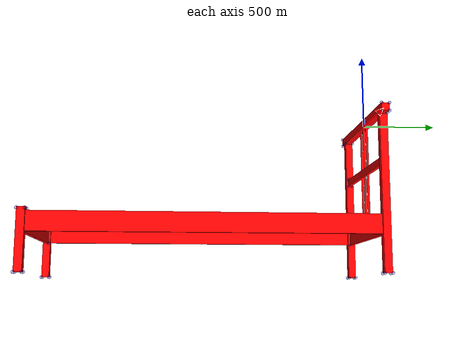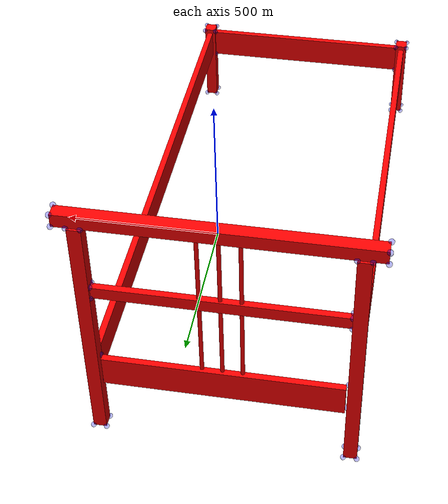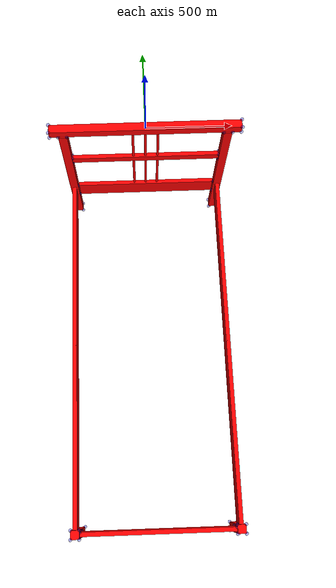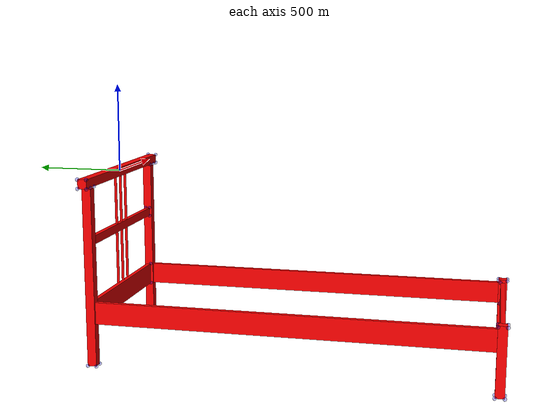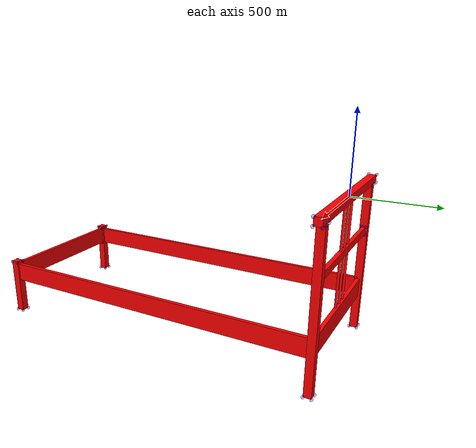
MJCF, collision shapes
<mujoco model="bed_dalselv_0270">
  <asset>
    <mesh file="bed_dalselv_0270/0.stl" name="part0" scale="1 1 1" />
    <mesh file="bed_dalselv_0270/9.stl" name="part9" scale="1 1 1" />
    <mesh file="bed_dalselv_0270/8.stl" name="part8" scale="1 1 1" />
    <mesh file="bed_dalselv_0270/7.stl" name="part7" scale="1 1 1" />
    <mesh file="bed_dalselv_0270/6.stl" name="part6" scale="1 1 1" />
    <mesh file="bed_dalselv_0270/5.stl" name="part6" scale="1 1 1" />
    <mesh file="bed_dalselv_0270/4.stl" name="part4" scale="1 1 1" />
    <mesh file="bed_dalselv_0270/3.stl" name="part3" scale="1 1 1" />
    <mesh file="bed_dalselv_0270/2.stl" name="part2" scale="1 1 1" />
    <mesh file="bed_dalselv_0270/14.stl" name="part14" scale="1 1 1" />
    <mesh file="bed_dalselv_0270/13.stl" name="part13" scale="1 1 1" />
    <mesh file="bed_dalselv_0270/12.stl" name="part12" scale="1 1 1" />
    <mesh file="bed_dalselv_0270/11.stl" name="part11" scale="1 1 1" />
    <mesh file="bed_dalselv_0270/10.stl" name="part10" scale="1 1 1" />
    <mesh file="bed_dalselv_0270/1.stl" name="part1" scale="1 1 1" />
  </asset>
  <equality>
    <weld active="false" body1="2_part10" body2="11_part6" solimp="1 1 0.5" solref="0.01 0.3" />
    <weld active="false" body1="12_part7" body2="11_part6" solimp="1 1 0.5" solref="0.01 0.3" />
    <weld active="false" body1="2_part10" body2="3_part11" solimp="1 1 0.5" solref="0.01 0.3" />
    <weld active="false" body1="12_part7" body2="3_part11" solimp="1 1 0.5" solref="0.01 0.3" />
    <weld active="false" body1="14_part9" body2="10_part5" solimp="1 1 0.5" solref="0.01 0.3" />
    <weld active="false" body1="13_part8" body2="10_part5" solimp="1 1 0.5" solref="0.01 0.3" />
    <weld active="false" body1="2_part10" body2="1_part1" solimp="1 1 0.5" solref="0.01 0.3" />
    <weld active="false" body1="12_part7" body2="1_part1" solimp="1 1 0.5" solref="0.01 0.3" />
    <weld active="false" body1="14_part9" body2="4_part12" solimp="1 1 0.5" solref="0.01 0.3" />
    <weld active="false" body1="13_part8" body2="4_part12" solimp="1 1 0.5" solref="0.01 0.3" />
    <weld active="false" body1="0_part0" body2="2_part10" solimp="1 1 0.5" solref="0.01 0.3" />
    <weld active="false" body1="0_part0" body2="12_part7" solimp="1 1 0.5" solref="0.01 0.3" />
    <weld active="false" body1="14_part9" body2="3_part11" solimp="1 1 0.5" solref="0.01 0.3" />
    <weld active="false" body1="13_part8" body2="3_part11" solimp="1 1 0.5" solref="0.01 0.3" />
    <weld active="false" body1="4_part12" body2="2_part10" solimp="1 1 0.5" solref="0.01 0.3" />
    <weld active="false" body1="4_part12" body2="12_part7" solimp="1 1 0.5" solref="0.01 0.3" />
  </equality>
  <worldbody>
    <body name="0_part0" pos="5e-06 -4e-07 0.0" quat="1 0 0 0">
      <geom conaffinity="0" contype="0" density="0" mesh="part0" name="0_part0_mesh" pos="0 0 0" rgba="0.82 0.71 0.55 1" type="mesh" />
      <site name="0_part0_horizontal_radius_site" pos="5e-06 -4e-07 0.0" quat="1 0 0 0" rgba="0 0 1 0.3" size="1" />
      <site name="0_part0_top_site" pos="5e-06 -3e-07 25.4000244" quat="1 0 0 0" rgba="0 0 1 0.3" size="1" />
      <site name="0_part0_bottom_site" pos="5e-06 -3e-07 -25.4000244" quat="1 0 0 0" rgba="0 0 1 0.3" size="1" />
      <site name="0_part0_corner_site8" pos="-558.799995 25.4000027 25.4000244" quat="1 0 0 0" rgba="0 0 1 0.3" size="10.5" />
      <site name="0_part0_corner_site7" pos="558.800005 25.4000027 25.4000244" quat="1 0 0 0" rgba="0 0 1 0.3" size="10.5" />
      <site name="0_part0_corner_site6" pos="558.800005 -25.4000034 25.4000244" quat="1 0 0 0" rgba="0 0 1 0.3" size="10.5" />
      <site name="0_part0_corner_site5" pos="-558.799995 -25.4000034 25.4000244" quat="1 0 0 0" rgba="0 0 1 0.3" size="10.5" />
      <site name="0_part0_corner_site4" pos="-558.799995 25.4000027 -25.4000244" quat="1 0 0 0" rgba="0 0 1 0.3" size="10.5" />
      <site name="0_part0_corner_site3" pos="558.800005 25.4000027 -25.4000244" quat="1 0 0 0" rgba="0 0 1 0.3" size="10.5" />
      <site name="0_part0_corner_site2" pos="558.800005 -25.4000034 -25.4000244" quat="1 0 0 0" rgba="0 0 1 0.3" size="10.5" />
      <site name="0_part0_corner_site1" pos="-558.799995 -25.4000034 -25.4000244" quat="1 0 0 0" rgba="0 0 1 0.3" size="10.5" />
      <geom density="50" name="noviz_collision_0_part0_0" pos="0 0.00121 0.35552" quat="1 0 0 0" rgba="1 0 0 1" size="558.8 25.40121 25.75555" solref="0.001 1" type="box" />
      <site name="Top-TallLeg,0,conn_site2" pos="-487 0 -25.40002" quat="1 0 0 0" rgba="0.9843, 0.1812, 0.1812, 0.3" size="1" />
      <site name="Top-TallLeg,0,conn_site1" pos="483 0 -25.40002" quat="1 0 0 0" rgba="0.9843, 0.1812, 0.1812, 0.3" size="1" />
    </body>
    <body name="14_part9" pos="482.600005 -2235.2000826 -850.9000244" quat="1 0 0 0">
      <geom conaffinity="0" contype="0" density="0" mesh="part9" name="14_part9_mesh" pos="0 0 0" rgba="0.82 0.71 0.55 1" type="mesh" />
      <site name="14_part9_horizontal_radius_site" pos="0.0 -2e-07 0.0" quat="1 0 0 0" rgba="0 0 1 0.3" size="1" />
      <site name="14_part9_top_site" pos="0.0 -1e-07 190.5" quat="1 0 0 0" rgba="0 0 1 0.3" size="1" />
      <site name="14_part9_bottom_site" pos="0.0 -1e-07 -190.5" quat="1 0 0 0" rgba="0 0 1 0.3" size="1" />
      <site name="14_part9_corner_site8" pos="-25.4 25.4000851 190.5" quat="1 0 0 0" rgba="0 0 1 0.3" size="10.5" />
      <site name="14_part9_corner_site7" pos="25.4 25.4000851 190.5" quat="1 0 0 0" rgba="0 0 1 0.3" size="10.5" />
      <site name="14_part9_corner_site6" pos="25.4 -25.4000854 190.5" quat="1 0 0 0" rgba="0 0 1 0.3" size="10.5" />
      <site name="14_part9_corner_site5" pos="-25.4 -25.4000854 190.5" quat="1 0 0 0" rgba="0 0 1 0.3" size="10.5" />
      <site name="14_part9_corner_site4" pos="-25.4 25.4000851 -190.5" quat="1 0 0 0" rgba="0 0 1 0.3" size="10.5" />
      <site name="14_part9_corner_site3" pos="25.4 25.4000851 -190.5" quat="1 0 0 0" rgba="0 0 1 0.3" size="10.5" />
      <site name="14_part9_corner_site2" pos="25.4 -25.4000854 -190.5" quat="1 0 0 0" rgba="0 0 1 0.3" size="10.5" />
      <site name="14_part9_corner_site1" pos="-25.4 -25.4000854 -190.5" quat="1 0 0 0" rgba="0 0 1 0.3" size="10.5" />
      <geom density="50" name="noviz_collision_14_part9_0" pos="-0.25296 0.25317 3.401" quat="1 0 0 0" rgba="1 0 0 1" size="25.14703 25.65308 193.901" solref="0.001 1" type="box" />
      <site name="ShortLeg-SideBottom1,0,conn_site1" pos="-3.17499 29.6001 91.5" quat="0.7071067 0.7071068 0 0" rgba="0.9801, 0.5419, 0.1038, 0.3" size="1" />
      <site name="ShortLeg-BottomBoard,0,180,conn_site2" pos="-23.20001 0.11377 112.9" quat="0.7071067 0 0.7071068 0" rgba="0.9809, 0.9809, 0.1133, 0.3" size="1" />
    </body>
    <body name="13_part8" pos="-482.599995 -2235.2000826 -850.9000244" quat="1 0 0 0">
      <geom conaffinity="0" contype="0" density="0" mesh="part8" name="13_part8_mesh" pos="0 0 0" rgba="0.82 0.71 0.55 1" type="mesh" />
      <site name="13_part8_horizontal_radius_site" pos="0.0 -2e-07 0.0" quat="1 0 0 0" rgba="0 0 1 0.3" size="1" />
      <site name="13_part8_top_site" pos="0.0 -1e-07 190.5" quat="1 0 0 0" rgba="0 0 1 0.3" size="1" />
      <site name="13_part8_bottom_site" pos="0.0 -1e-07 -190.5" quat="1 0 0 0" rgba="0 0 1 0.3" size="1" />
      <site name="13_part8_corner_site8" pos="-25.4 25.4000851 190.5" quat="1 0 0 0" rgba="0 0 1 0.3" size="10.5" />
      <site name="13_part8_corner_site7" pos="25.4 25.4000851 190.5" quat="1 0 0 0" rgba="0 0 1 0.3" size="10.5" />
      <site name="13_part8_corner_site6" pos="25.4 -25.4000854 190.5" quat="1 0 0 0" rgba="0 0 1 0.3" size="10.5" />
      <site name="13_part8_corner_site5" pos="-25.4 -25.4000854 190.5" quat="1 0 0 0" rgba="0 0 1 0.3" size="10.5" />
      <site name="13_part8_corner_site4" pos="-25.4 25.4000851 -190.5" quat="1 0 0 0" rgba="0 0 1 0.3" size="10.5" />
      <site name="13_part8_corner_site3" pos="25.4 25.4000851 -190.5" quat="1 0 0 0" rgba="0 0 1 0.3" size="10.5" />
      <site name="13_part8_corner_site2" pos="25.4 -25.4000854 -190.5" quat="1 0 0 0" rgba="0 0 1 0.3" size="10.5" />
      <site name="13_part8_corner_site1" pos="-25.4 -25.4000854 -190.5" quat="1 0 0 0" rgba="0 0 1 0.3" size="10.5" />
      <geom density="50" name="noviz_collision_13_part8_0" pos="0.25296 0.25317 3.401" quat="1 0 0 0" rgba="1 0 0 1" size="25.65295 25.65308 193.901" solref="0.001 1" type="box" />
      <site name="ShortLeg-BottomBoard,0,180,conn_site1" pos="23.60001 0.11377 116.9" quat="0.7071067 0 -0.7071068 0" rgba="0.9809, 0.9809, 0.1133, 0.3" size="1" />
      <site name="ShortLeg-SideBoard,0,conn_site1" pos="3.17502 26.2002 100.9" quat="0.7071067 0.7071068 0 0" rgba="0.5567, 0.9916, 0.1219, 0.3" size="1" />
    </body>
    <body name="12_part7" pos="-482.599995 -4e-07 -533.4000244" quat="1 0 0 0">
      <geom conaffinity="0" contype="0" density="0" mesh="part7" name="12_part7_mesh" pos="0 0 0" rgba="0.82 0.71 0.55 1" type="mesh" />
      <site name="12_part7_horizontal_radius_site" pos="0.0 -4e-07 0.0" quat="1 0 0 0" rgba="0 0 1 0.3" size="1" />
      <site name="12_part7_top_site" pos="0.0 -3e-07 508.0" quat="1 0 0 0" rgba="0 0 1 0.3" size="1" />
      <site name="12_part7_bottom_site" pos="0.0 -3e-07 -508.0" quat="1 0 0 0" rgba="0 0 1 0.3" size="1" />
      <site name="12_part7_corner_site8" pos="-25.4 25.4000027 508.0" quat="1 0 0 0" rgba="0 0 1 0.3" size="10.5" />
      <site name="12_part7_corner_site7" pos="25.4 25.4000027 508.0" quat="1 0 0 0" rgba="0 0 1 0.3" size="10.5" />
      <site name="12_part7_corner_site6" pos="25.4 -25.4000034 508.0" quat="1 0 0 0" rgba="0 0 1 0.3" size="10.5" />
      <site name="12_part7_corner_site5" pos="-25.4 -25.4000034 508.0" quat="1 0 0 0" rgba="0 0 1 0.3" size="10.5" />
      <site name="12_part7_corner_site4" pos="-25.4 25.4000027 -508.0" quat="1 0 0 0" rgba="0 0 1 0.3" size="10.5" />
      <site name="12_part7_corner_site3" pos="25.4 25.4000027 -508.0" quat="1 0 0 0" rgba="0 0 1 0.3" size="10.5" />
      <site name="12_part7_corner_site2" pos="25.4 -25.4000034 -508.0" quat="1 0 0 0" rgba="0 0 1 0.3" size="10.5" />
      <site name="12_part7_corner_site1" pos="-25.4 -25.4000034 -508.0" quat="1 0 0 0" rgba="0 0 1 0.3" size="10.5" />
      <geom density="50" name="noviz_collision_12_part7_0" pos="0.17764 -0.17332 -3.93762" quat="1 0 0 0" rgba="1 0 0 1" size="25.57764 25.22668 504.0624" solref="0.001 1" type="box" />
      <site name="TallLeg-Top,0,conn_site2" pos="-4.39999 0 508" quat="1 0 0 0" rgba="0.9843, 0.1812, 0.1812, 0.3" size="1" />
      <site name="TallLeg-CenterPiece,0,180,conn_site5" pos="22.60001 0.11377 196.4" quat="0.7071067 0 -0.7071068 0" rgba="0.2017, 0.9819, 0.2017, 0.3" size="1" />
      <site name="TallLeg-BottomPiece,0,180,conn_site2" pos="23.20001 0.11377 -199.6" quat="0.7071067 0 -0.7071068 0" rgba="0.0925, 0.9844, 0.5384, 0.3" size="1" />
      <site name="TallLeg-SideBoard,0,conn_site1" pos="3.17502 -22.9 -195.6" quat="0.7071067 -0.7071068 0 0" rgba="0.1232, 0.9898, 0.9898, 0.3" size="1" />
    </body>
    <body name="11_part6" pos="5e-06 0.2275379 -736.6000244" quat="1 0 0 0">
      <geom conaffinity="0" contype="0" density="0" mesh="part6" name="11_part6_mesh" pos="0 0 0" rgba="0.82 0.71 0.55 1" type="mesh" />
      <site name="11_part6_horizontal_radius_site" pos="-1.1e-06 0.0 -0.0" quat="1 0 0 0" rgba="0 0 1 0.3" size="1" />
      <site name="11_part6_top_site" pos="-1.1e-06 0.0 63.5" quat="1 0 0 0" rgba="0 0 1 0.3" size="1" />
      <site name="11_part6_bottom_site" pos="-1.1e-06 0.0 -63.5" quat="1 0 0 0" rgba="0 0 1 0.3" size="1" />
      <site name="11_part6_corner_site8" pos="-469.9000011 12.7000046 63.5" quat="1 0 0 0" rgba="0 0 1 0.3" size="10.5" />
      <site name="11_part6_corner_site7" pos="469.8999989 12.7000046 63.5" quat="1 0 0 0" rgba="0 0 1 0.3" size="10.5" />
      <site name="11_part6_corner_site6" pos="469.8999989 -12.7000046 63.5" quat="1 0 0 0" rgba="0 0 1 0.3" size="10.5" />
      <site name="11_part6_corner_site5" pos="-469.9000011 -12.7000046 63.5" quat="1 0 0 0" rgba="0 0 1 0.3" size="10.5" />
      <site name="11_part6_corner_site4" pos="-469.9000011 12.7000046 -63.5" quat="1 0 0 0" rgba="0 0 1 0.3" size="10.5" />
      <site name="11_part6_corner_site3" pos="469.8999989 12.7000046 -63.5" quat="1 0 0 0" rgba="0 0 1 0.3" size="10.5" />
      <site name="11_part6_corner_site2" pos="469.8999989 -12.7000046 -63.5" quat="1 0 0 0" rgba="0 0 1 0.3" size="10.5" />
      <site name="11_part6_corner_site1" pos="-469.9000011 -12.7000046 -63.5" quat="1 0 0 0" rgba="0 0 1 0.3" size="10.5" />
      <geom density="50" name="noviz_collision_11_part6_0" pos="0 0 0.23956" quat="1 0 0 0" rgba="1 0 0 1" size="450 12.7 63.73956" solref="0.001 1" type="box" />
      <site name="BottomPiece-TallLeg,0,180,conn_site2" pos="-459.4 -0.11377 3.60004" quat="0.7071067 0 -0.7071068 0" rgba="0.0925, 0.9844, 0.5384, 0.3" size="1" />
      <site name="BottomPiece-TallLeg,0,180,conn_site1" pos="459 -0.11377 -15.39996" quat="0.7071067 0 0.7071068 0" rgba="0.0925, 0.9844, 0.5384, 0.3" size="1" />
    </body>
    <body name="10_part5" pos="5e-06 -2234.9724635 -736.6000244" quat="1 0 0 0">
      <geom conaffinity="0" contype="0" density="0" mesh="part5" name="10_part5_mesh" pos="0 0 0" rgba="0.82 0.71 0.55 1" type="mesh" />
      <site name="10_part5_horizontal_radius_site" pos="-1.1e-06 0.0 0.0" quat="1 0 0 0" rgba="0 0 1 0.3" size="1" />
      <site name="10_part5_top_site" pos="-1.1e-06 0.0 63.5" quat="1 0 0 0" rgba="0 0 1 0.3" size="1" />
      <site name="10_part5_bottom_site" pos="-1.1e-06 0.0 -63.5" quat="1 0 0 0" rgba="0 0 1 0.3" size="1" />
      <site name="10_part5_corner_site8" pos="-469.9000011 12.7 63.5" quat="1 0 0 0" rgba="0 0 1 0.3" size="10.5" />
      <site name="10_part5_corner_site7" pos="469.8999989 12.7 63.5" quat="1 0 0 0" rgba="0 0 1 0.3" size="10.5" />
      <site name="10_part5_corner_site6" pos="469.8999989 -12.7 63.5" quat="1 0 0 0" rgba="0 0 1 0.3" size="10.5" />
      <site name="10_part5_corner_site5" pos="-469.9000011 -12.7 63.5" quat="1 0 0 0" rgba="0 0 1 0.3" size="10.5" />
      <site name="10_part5_corner_site4" pos="-469.9000011 12.7 -63.5" quat="1 0 0 0" rgba="0 0 1 0.3" size="10.5" />
      <site name="10_part5_corner_site3" pos="469.8999989 12.7 -63.5" quat="1 0 0 0" rgba="0 0 1 0.3" size="10.5" />
      <site name="10_part5_corner_site2" pos="469.8999989 -12.7 -63.5" quat="1 0 0 0" rgba="0 0 1 0.3" size="10.5" />
      <site name="10_part5_corner_site1" pos="-469.9000011 -12.7 -63.5" quat="1 0 0 0" rgba="0 0 1 0.3" size="10.5" />
      <geom density="50" name="noviz_collision_10_part5_0" pos="0 0 0.23956" quat="1 0 0 0" rgba="1 0 0 1" size="469.9 12.7 63.73956" solref="0.001 1" type="box" />
      <site name="BottomBoard-ShortLeg,0,180,conn_site2" pos="459.4 -0.11401 -1.39996" quat="0.7071067 0 0.7071068 0" rgba="0.9809, 0.9809, 0.1133, 0.3" size="1" />
      <site name="BottomBoard-ShortLeg,0,180,conn_site1" pos="-459 -0.11401 2.60004" quat="0.7071067 0 -0.7071068 0" rgba="0.9809, 0.9809, 0.1133, 0.3" size="1" />
    </body>

    <body name="4_part12" pos="476.2500179 -1117.3724925 -736.6000244" quat="1 0 0 0">
      <geom conaffinity="0" contype="0" density="0" mesh="part12" name="4_part12_mesh" pos="0 0 0" rgba="0.82 0.71 0.55 1" type="mesh" />
      <site name="4_part12_horizontal_radius_site" pos="-4e-07 4.6e-06 0.0" quat="1 0 0 0" rgba="0 0 1 0.3" size="1" />
      <site name="4_part12_top_site" pos="-4e-07 4.6e-06 63.5" quat="1 0 0 0" rgba="0 0 1 0.3" size="1" />
      <site name="4_part12_bottom_site" pos="-4e-07 4.6e-06 -63.5" quat="1 0 0 0" rgba="0 0 1 0.3" size="1" />
      <site name="4_part12_corner_site8" pos="-19.0500133 1104.9000336 63.5" quat="1 0 0 0" rgba="0 0 1 0.3" size="10.5" />
      <site name="4_part12_corner_site7" pos="19.0500126 1104.9000336 63.5" quat="1 0 0 0" rgba="0 0 1 0.3" size="10.5" />
      <site name="4_part12_corner_site6" pos="19.0500126 -1104.9000244 63.5" quat="1 0 0 0" rgba="0 0 1 0.3" size="10.5" />
      <site name="4_part12_corner_site5" pos="-19.0500133 -1104.9000244 63.5" quat="1 0 0 0" rgba="0 0 1 0.3" size="10.5" />
      <site name="4_part12_corner_site4" pos="-19.0500133 1104.9000336 -63.5" quat="1 0 0 0" rgba="0 0 1 0.3" size="10.5" />
      <site name="4_part12_corner_site3" pos="19.0500126 1104.9000336 -63.5" quat="1 0 0 0" rgba="0 0 1 0.3" size="10.5" />
      <site name="4_part12_corner_site2" pos="19.0500126 -1104.9000244 -63.5" quat="1 0 0 0" rgba="0 0 1 0.3" size="10.5" />
      <site name="4_part12_corner_site1" pos="-19.0500133 -1104.9000244 -63.5" quat="1 0 0 0" rgba="0 0 1 0.3" size="10.5" />
      <geom density="50" name="noviz_collision_4_part12_0" pos="6.24997 -0.00037 0.49866" quat="1 0 0 0" rgba="1 0 0 1" size="12.5 1104.9 62.5" solref="0.001 1" type="box" />
      <site name="SideBottom1-TallLeg,0,conn_site1" pos="3.17499 1094.072 -8.39996" quat="0.7071067 -0.7071068 0 0" rgba="0.0633, 0.5103, 0.9573, 0.3" size="1" />
      <site name="SideBottom1-ShortLeg,0,conn_site1" pos="3.17499 -1088.228 -22.79999" quat="0.7071067 0.7071068 0 0" rgba="0.9801, 0.5419, 0.1038, 0.3" size="1" />
    </body>
    <body name="3_part11" pos="-476.25 -1117.3724925 -736.6000244" quat="1 0 0 0">
      <geom conaffinity="0" contype="0" density="0" mesh="part11" name="3_part11_mesh" pos="0 0 0" rgba="0.82 0.71 0.55 1" type="mesh" />
      <site name="3_part11_horizontal_radius_site" pos="0.0 4.6e-06 0.0" quat="1 0 0 0" rgba="0 0 1 0.3" size="1" />
      <site name="3_part11_top_site" pos="0.0 4.6e-06 63.5" quat="1 0 0 0" rgba="0 0 1 0.3" size="1" />
      <site name="3_part11_bottom_site" pos="0.0 4.6e-06 -63.5" quat="1 0 0 0" rgba="0 0 1 0.3" size="1" />
      <site name="3_part11_corner_site8" pos="-19.050005 1104.9000336 63.5" quat="1 0 0 0" rgba="0 0 1 0.3" size="10.5" />
      <site name="3_part11_corner_site7" pos="19.050005 1104.9000336 63.5" quat="1 0 0 0" rgba="0 0 1 0.3" size="10.5" />
      <site name="3_part11_corner_site6" pos="19.050005 -1104.9000244 63.5" quat="1 0 0 0" rgba="0 0 1 0.3" size="10.5" />
      <site name="3_part11_corner_site5" pos="-19.050005 -1104.9000244 63.5" quat="1 0 0 0" rgba="0 0 1 0.3" size="10.5" />
      <site name="3_part11_corner_site4" pos="-19.050005 1104.9000336 -63.5" quat="1 0 0 0" rgba="0 0 1 0.3" size="10.5" />
      <site name="3_part11_corner_site3" pos="19.050005 1104.9000336 -63.5" quat="1 0 0 0" rgba="0 0 1 0.3" size="10.5" />
      <site name="3_part11_corner_site2" pos="19.050005 -1104.9000244 -63.5" quat="1 0 0 0" rgba="0 0 1 0.3" size="10.5" />
      <site name="3_part11_corner_site1" pos="-19.050005 -1104.9000244 -63.5" quat="1 0 0 0" rgba="0 0 1 0.3" size="10.5" />
      <geom density="50" name="noviz_collision_3_part11_0" pos="-6.24997 -0.00037 0.49866" quat="1 0 0 0" rgba="1 0 0 1" size="12.5 1104.9 62.5" solref="0.001 1" type="box" />
      <site name="SideBoard-ShortLeg,0,conn_site1" pos="-3.17499 -1091.628 -13.39996" quat="0.7071067 0.7071068 0 0" rgba="0.5567, 0.9916, 0.1219, 0.3" size="1" />
      <site name="SideBoard-TallLeg,0,conn_site1" pos="-3.17499 1094.472 7.60004" quat="0.7071067 -0.7071068 0 0" rgba="0.1232, 0.9898, 0.9898, 0.3" size="1" />
    </body>
    <body name="2_part10" pos="482.600005 -4e-07 -533.4000244" quat="1 0 0 0">
      <geom conaffinity="0" contype="0" density="0" mesh="part10" name="2_part10_mesh" pos="0 0 0" rgba="0.82 0.71 0.55 1" type="mesh" />
      <site name="2_part10_horizontal_radius_site" pos="0.0 -4e-07 0.0" quat="1 0 0 0" rgba="0 0 1 0.3" size="1" />
      <site name="2_part10_top_site" pos="0.0 -3e-07 508.0" quat="1 0 0 0" rgba="0 0 1 0.3" size="1" />
      <site name="2_part10_bottom_site" pos="0.0 -3e-07 -508.0" quat="1 0 0 0" rgba="0 0 1 0.3" size="1" />
      <site name="2_part10_corner_site8" pos="-25.4 25.4000027 508.0" quat="1 0 0 0" rgba="0 0 1 0.3" size="10.5" />
      <site name="2_part10_corner_site7" pos="25.4 25.4000027 508.0" quat="1 0 0 0" rgba="0 0 1 0.3" size="10.5" />
      <site name="2_part10_corner_site6" pos="25.4 -25.4000034 508.0" quat="1 0 0 0" rgba="0 0 1 0.3" size="10.5" />
      <site name="2_part10_corner_site5" pos="-25.4 -25.4000034 508.0" quat="1 0 0 0" rgba="0 0 1 0.3" size="10.5" />
      <site name="2_part10_corner_site4" pos="-25.4 25.4000027 -508.0" quat="1 0 0 0" rgba="0 0 1 0.3" size="10.5" />
      <site name="2_part10_corner_site3" pos="25.4 25.4000027 -508.0" quat="1 0 0 0" rgba="0 0 1 0.3" size="10.5" />
      <site name="2_part10_corner_site2" pos="25.4 -25.4000034 -508.0" quat="1 0 0 0" rgba="0 0 1 0.3" size="10.5" />
      <site name="2_part10_corner_site1" pos="-25.4 -25.4000034 -508.0" quat="1 0 0 0" rgba="0 0 1 0.3" size="10.5" />
      <geom density="50" name="noviz_collision_2_part10_0" pos="-0.17764 -0.17332 -3.93762" quat="1 0 0 0" rgba="1 0 0 1" size="25.22235 25.22668 504.0624" solref="0.001 1" type="box" />
      <site name="TallLeg-Top,0,conn_site1" pos="0.39999 0 508" quat="1 0 0 0" rgba="0.9843, 0.1812, 0.1812, 0.3" size="1" />
      <site name="TallLeg-CenterPiece,0,180,conn_site4" pos="-20.5 0.11377 205.2" quat="0.7071067 0 0.7071068 0" rgba="0.2017, 0.9819, 0.2017, 0.3" size="1" />
      <site name="TallLeg-BottomPiece,0,180,conn_site1" pos="-23.60001 0.11377 -218.6" quat="0.7071067 0 0.7071068 0" rgba="0.0925, 0.9844, 0.5384, 0.3" size="1" />
      <site name="TallLeg-SideBottom1,0,conn_site1" pos="-3.17499 -23.3 -211.6" quat="0.7071067 -0.7071068 0 0" rgba="0.0633, 0.5103, 0.9573, 0.3" size="1" />
    </body>
    <body name="1_part1" pos="-8.4e-06 0.2275379 -330.2000301" quat="1 0 0 0">
      <geom conaffinity="0" contype="0" density="1" mesh="part1" name="1_part1_mesh" pos="0 0 0" rgba="0.82 0.71 0.55 1" type="mesh" />
      <geom density="100" euler="0 0 0" name="noviz_collision_1_part1_1" pos="0 0 0" rgba="1 0 0 1" size="460 13 24" solref="0.001 1" type="box" />
      <site name="1_part1_horizontal_radius_site" pos="1.2e-06 0.0 4e-07" quat="1 0 0 0" rgba="0 0 1 0.3" size="1" />
      <site name="1_part1_top_site" pos="1.2e-06 0.0 25.4000061" quat="1 0 0 0" rgba="0 0 1 0.3" size="1" />
      <site name="1_part1_bottom_site" pos="1.2e-06 0.0 -25.4000053" quat="1 0 0 0" rgba="0 0 1 0.3" size="1" />
      <site name="1_part1_corner_site8" pos="-457.2000122 12.7000046 25.4000061" quat="1 0 0 0" rgba="0 0 1 0.3" size="10.5" />
      <site name="1_part1_corner_site7" pos="457.2000145 12.7000046 25.4000061" quat="1 0 0 0" rgba="0 0 1 0.3" size="10.5" />
      <site name="1_part1_corner_site6" pos="457.2000145 -12.7000046 25.4000061" quat="1 0 0 0" rgba="0 0 1 0.3" size="10.5" />
      <site name="1_part1_corner_site5" pos="-457.2000122 -12.7000046 25.4000061" quat="1 0 0 0" rgba="0 0 1 0.3" size="10.5" />
      <site name="1_part1_corner_site4" pos="-457.2000122 12.7000046 -25.4000053" quat="1 0 0 0" rgba="0 0 1 0.3" size="10.5" />
      <site name="1_part1_corner_site3" pos="457.2000145 12.7000046 -25.4000053" quat="1 0 0 0" rgba="0 0 1 0.3" size="10.5" />
      <site name="1_part1_corner_site2" pos="457.2000145 -12.7000046 -25.4000053" quat="1 0 0 0" rgba="0 0 1 0.3" size="10.5" />
      <site name="1_part1_corner_site1" pos="-457.2000122 -12.7000046 -25.4000053" quat="1 0 0 0" rgba="0 0 1 0.3" size="10.5" />
      <geom conaffinity="0" contype="0" density="0" mesh="part4" name="1_part1_mesh2" pos="-75 0 0" rgba="0.82 0.71 0.55 1" type="mesh" />
      <geom density="50" name="noviz_collision_1_part1_2" pos="-75 0 -15.79996" quat="1 0 0 0" rgba="1 0 0 1" size="7.5 320" solref="0.001 1" type="cylinder" />
      <geom conaffinity="0" contype="0" density="0" mesh="part3" name="1_part1_mesh3" pos="0 0 0" rgba="0.82 0.71 0.55 1" type="mesh" />
      <geom density="50" name="noviz_collision_1_part1_3" pos="0 0 -15.79996" quat="1 0 0 0" rgba="1 0 0 1" size="7.5 320" solref="0.001 1" type="cylinder" />
      <geom conaffinity="0" contype="0" density="0" mesh="part2" name="1_part1_mesh4" pos="75 0 0" rgba="0.82 0.71 0.55 1" type="mesh" />
      <geom density="50" name="noviz_collision_1_part1_4" pos="75 0 -15.79996" quat="1 0 0 0" rgba="1 0 0 1" size="7.5 320" solref="0.001 1" type="cylinder" />
      <site name="CenterPiece-TallLeg,0,180,conn_site5" pos="-460 -0.11377 -6.79996" quat="0.7071067 0 -0.7071068 0" rgba="0.2017, 0.9819, 0.2017, 0.3" size="1" />
      <site name="CenterPiece-TallLeg,0,180,conn_site4" pos="462.1 -0.11377 2.00003" quat="0.7071067 0 0.7071068 0" rgba="0.2017, 0.9819, 0.2017, 0.3" size="1" />
    </body>
  </worldbody>
</mujoco>
